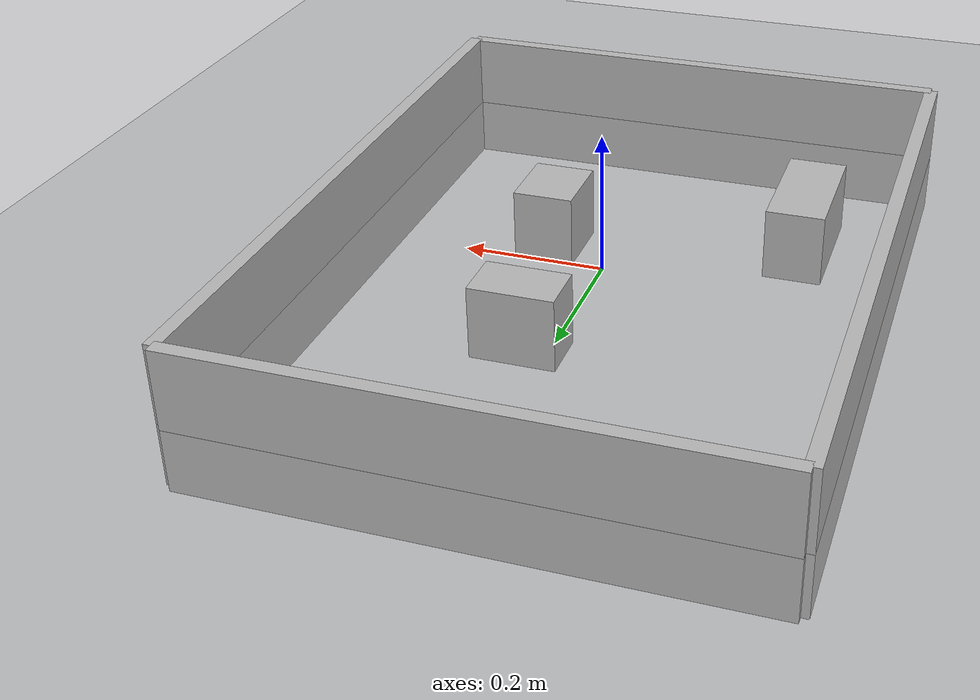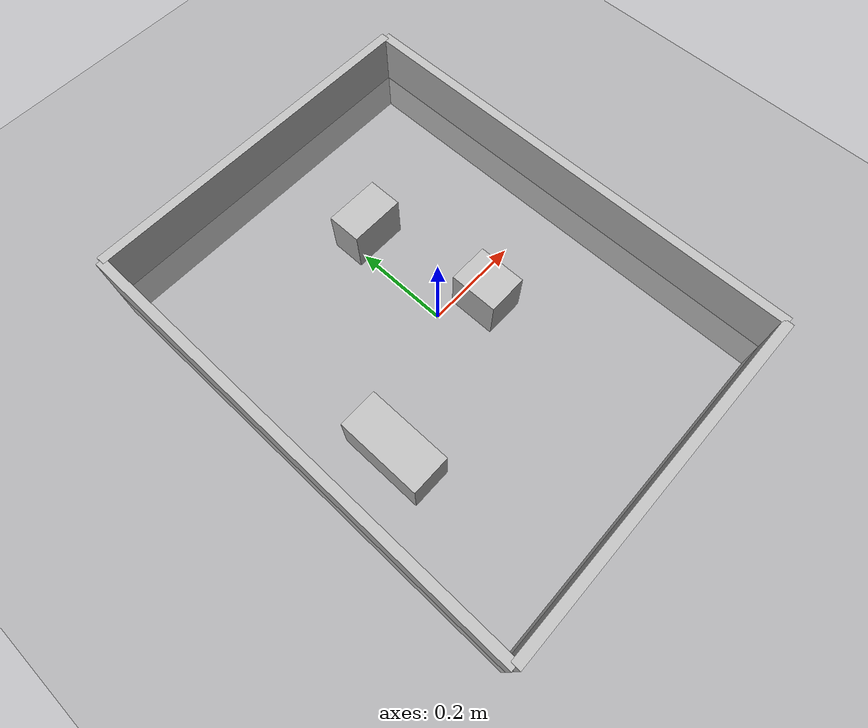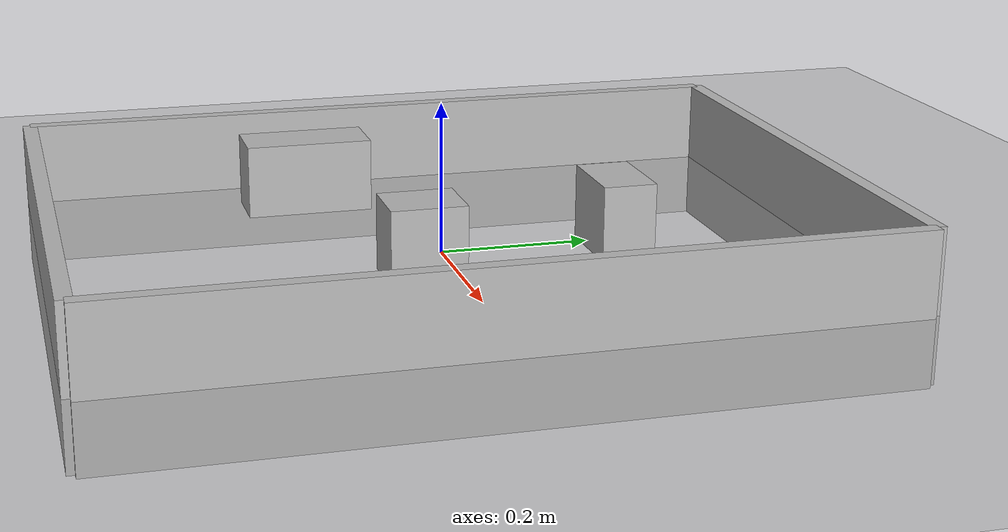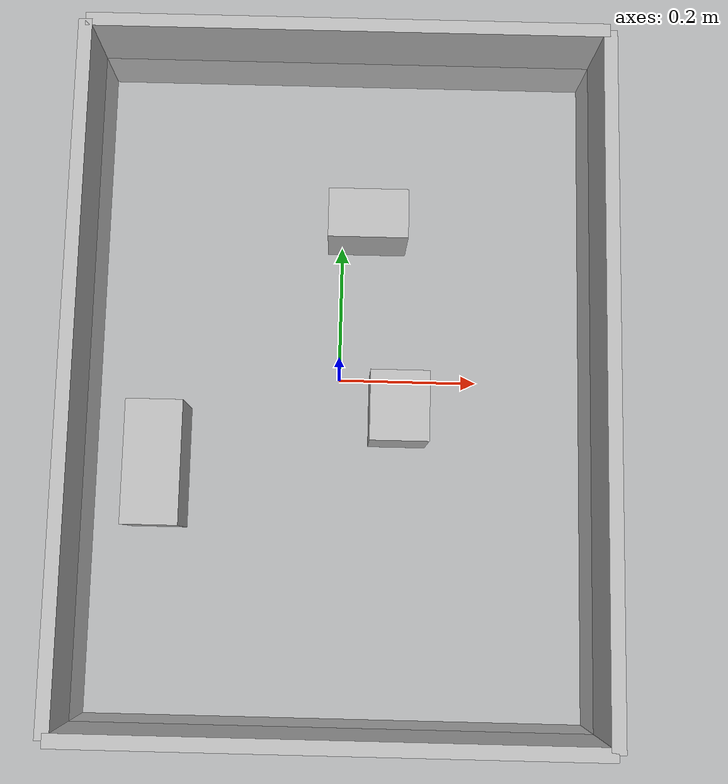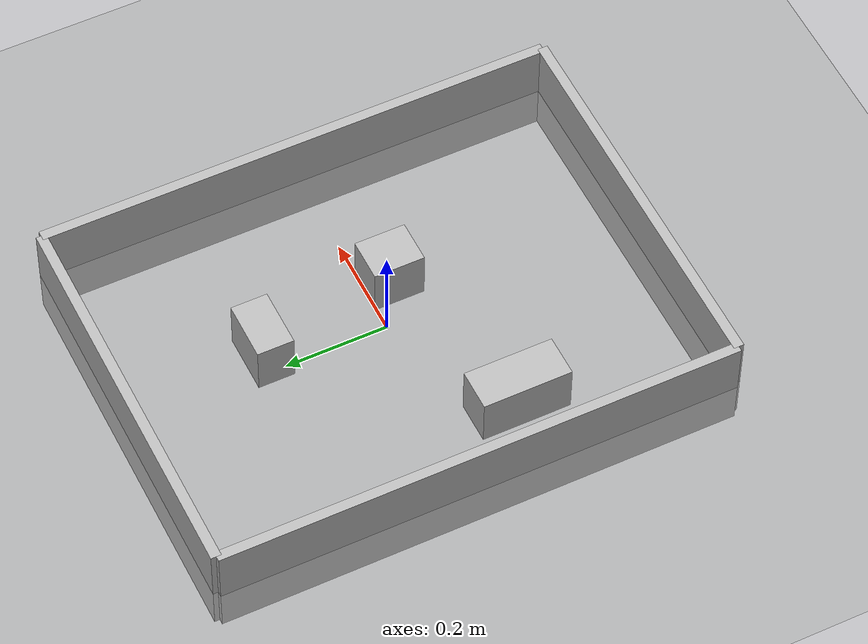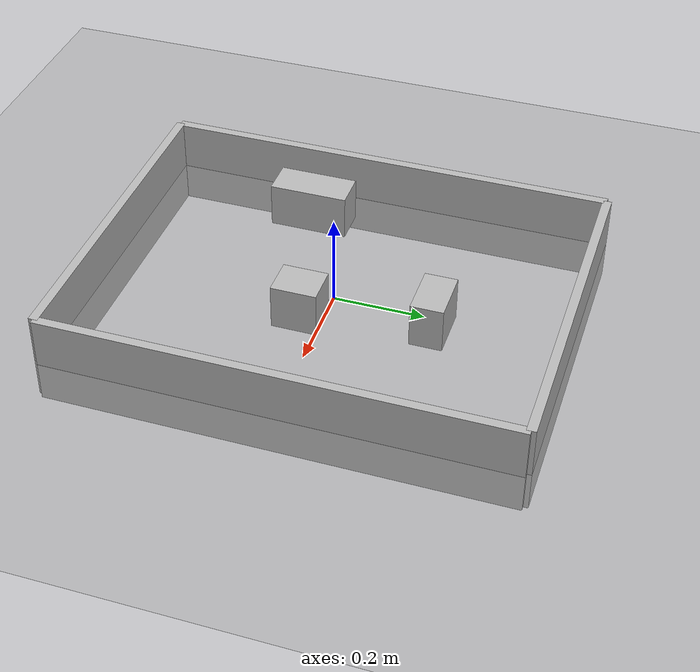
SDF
<?xml version="1.0" ?>
<sdf version="1.6">
    <world name="default">
        <gui>
            <camera name='user_camera'>
                <projection_type>orthographic</projection_type>
                <pose frame=''>0 0 1.02 0 1.5707 1.5707</pose>
            </camera>
        </gui>
        <include>
            <uri>model://victor_table_plane</uri>
        </include>
        <include>
            <uri>model://sun</uri>
        </include>
        <plugin name="stepping_plugin" filename="libstepping_plugin.so"/>
        <plugin name="collision_map_plugin" filename="libcollision_map_plugin.so"/>
        <physics name="ode" type="ode">
            <real_time_update_rate>1000</real_time_update_rate>
            <ode>
                <solver>
                    <type>quick</type>
                    <friction_model>cone_model</friction_model>
                </solver>
                <constraints>
                    <contact_surface_layer>0.002</contact_surface_layer>
                </constraints>
            </ode>
        </physics>
        <include>
            <uri>model://table_arena</uri>
            <pose>0 0 0 0 0 0</pose>
            <name>arena</name>
        </include>

        <model name="obstacle1">
            <static>true</static>
            <link name="link_1">
                <pose>0.085 -0.047 0.05 0 0 0</pose>
                <visual name="visual">
                    <geometry>
                        <box>
                            <size>0.083 0.099 0.1</size>
                        </box>
                    </geometry>
                </visual>
                <collision name="collision">
                    <geometry>
                        <box>
                            <size>0.083 0.099 0.1</size>
                        </box>
                    </geometry>
                </collision>
            </link>
        </model>
        <model name="obstacle2">
            <static>true</static>
            <link name="link_1">
                <pose>0.036 0.227 0.05 0 0 0</pose>
                <visual name="visual">
                    <geometry>
                        <box>
                            <size>0.114 0.071 0.1</size>
                        </box>
                    </geometry>
                </visual>
                <collision name="collision">
                    <geometry>
                        <box>
                            <size>0.114 0.071 0.1</size>
                        </box>
                    </geometry>
                </collision>
            </link>
        </model>
        <model name="obstacle3">
            <static>true</static>
            <link name="link_1">
                <pose>-0.255 -0.133 0.05 0 0 0</pose>
                <visual name="visual">
                    <geometry>
                        <box>
                            <size>0.08 0.173 0.1</size>
                        </box>
                    </geometry>
                </visual>
                <collision name="collision">
                    <geometry>
                        <box>
                            <size>0.08 0.173 0.1</size>
                        </box>
                    </geometry>
                </collision>
            </link>
        </model>
    </world>
</sdf>

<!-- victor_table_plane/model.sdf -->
<sdf version="1.5">
    <model name="ground_plane">
        <static>true</static>
        <link name="link">
            <collision name="collision">
                <geometry>
                    <plane>
                        <normal>0 0 1</normal>
                        <size>100 100</size>
                    </plane>
                </geometry>
                <surface>
                    <friction>
                        <ode>
                            <mu>1000</mu>
                            <mu2>1000</mu2>
                        </ode>
                    </friction>
                    <contact>
                        <ode>
                            <min_depth>0.005</min_depth>
                        </ode>
                    </contact>
                </surface>
            </collision>
            <visual name="visual">
                <cast_shadows>false</cast_shadows>
                <geometry>
                    <plane>
                        <normal>0 0 1</normal>
                        <size>100 100</size>
                    </plane>
                </geometry>
                <material>
                    <script>
                        <uri>file://media/materials/scripts/gazebo.material</uri>
                        <name>Gazebo/Gray</name>
                    </script>
                </material>
            </visual>
        </link>
    </model>
</sdf>

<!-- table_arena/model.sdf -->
<sdf version="1.5">
<model name="table_arena">
    <static>true</static>
    <link name="north_wall">
      <pose>0 0.505 0.01 0 0 0</pose>
      <visual name="visual">
        <cast_shadows>0</cast_shadows>
        <geometry>
          <box>
          <size>0.76 0.02 0.2</size>
          </box>
        </geometry>
      </visual>
      <collision name="collision">
        <geometry>
          <box>
          <size>0.76 0.02 0.2</size>
          </box>
        </geometry>
      </collision>
    </link>
    <link name="south_wall">
      <pose>0 -0.505 0.01 0 0 0</pose>
      <visual name="visual">
        <cast_shadows>0</cast_shadows>
        <geometry>
          <box>
          <size>0.76 0.02 0.2</size>
          </box>
        </geometry>
      </visual>
      <collision name="collision">
        <geometry>
          <box>
          <size>0.76 0.02 0.2</size>
          </box>
        </geometry>
      </collision>
    </link>
    <link name="east_wall">
      <pose>0.38 0 0.01 0 0 0</pose>
      <visual name="visual">
        <cast_shadows>0</cast_shadows>
        <geometry>
          <box>
          <size>0.02 1.01 0.2</size>
          </box>
        </geometry>
      </visual>
      <collision name="collision">
        <geometry>
          <box>
          <size>0.02 1.01 0.2</size>
          </box>
        </geometry>
      </collision>
    </link>
    <link name="west_wall">
      <pose>-0.38 0 0.01 0 0 0</pose>
      <visual name="visual">
        <cast_shadows>0</cast_shadows>
        <geometry>
          <box>
          <size>0.02 1.01 0.2</size>
          </box>
        </geometry>
      </visual>
      <collision name="collision">
        <geometry>
          <box>
          <size>0.02 1.01 0.2</size>
          </box>
        </geometry>
      </collision>
    </link>
  </model>
</sdf>
